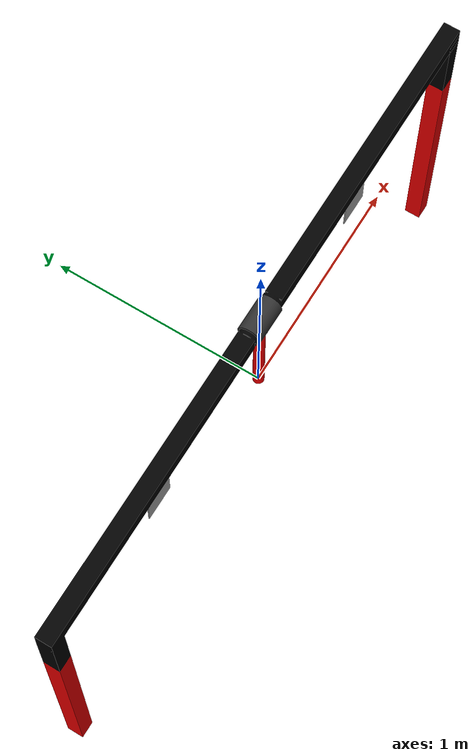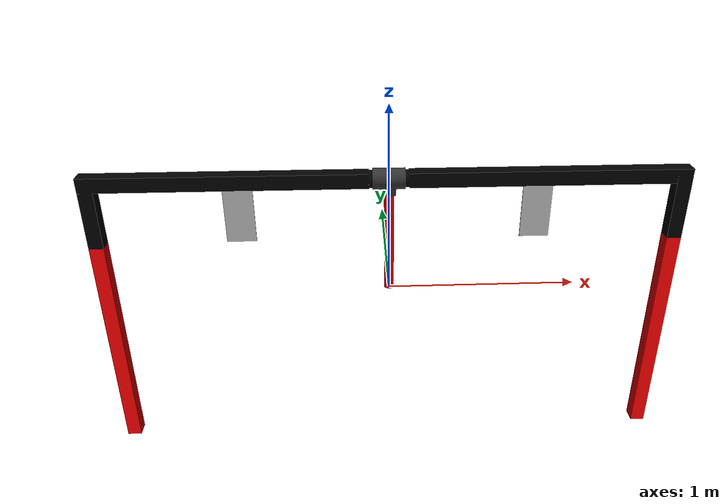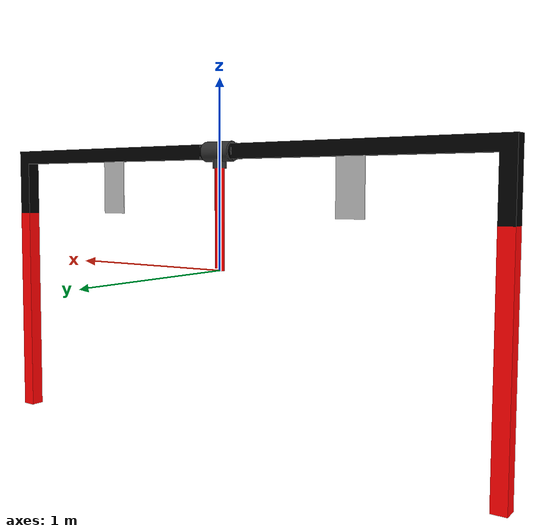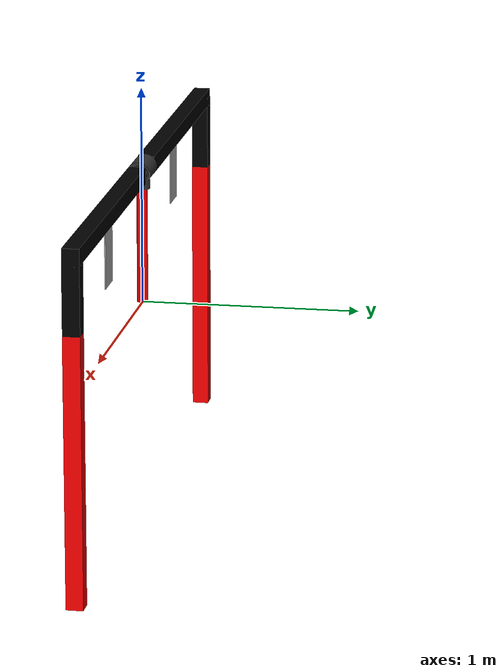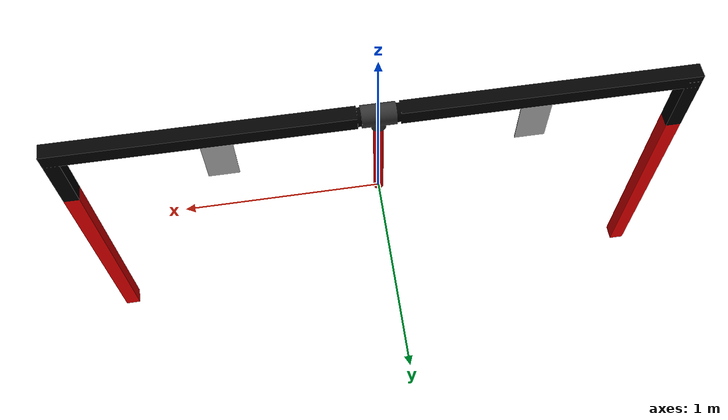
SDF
<?xml version="1.0" ?>
<sdf version="1.5">
<!-- SDF file for the gate -->
<model name="qual_gate">
  <static>true</static>
  <link name="gate_link">

  <visual name="qual_gate">
    <pose>0 0 0 0 0 0</pose>
    <geometry>
      <mesh><uri>model://qual_gate/meshes/qual_gate_with_images.dae</uri><scale>1 1 1</scale></mesh>
    </geometry>
  </visual>

  <collision name="qual_gate">
    <pose>0 0 0 0 0 0</pose>
    <geometry>
      <mesh><uri>model://qual_gate/meshes/qual_gate.stl</uri><scale>1 1 1</scale></mesh>
    </geometry>
  </collision>

  </link>
</model>
</sdf>
